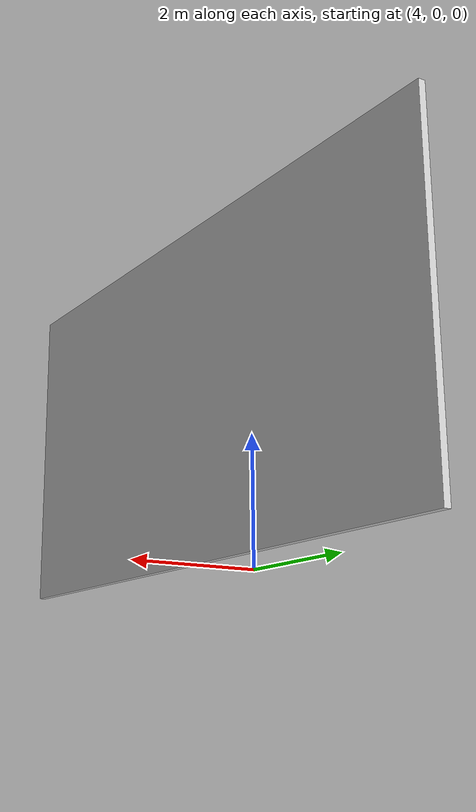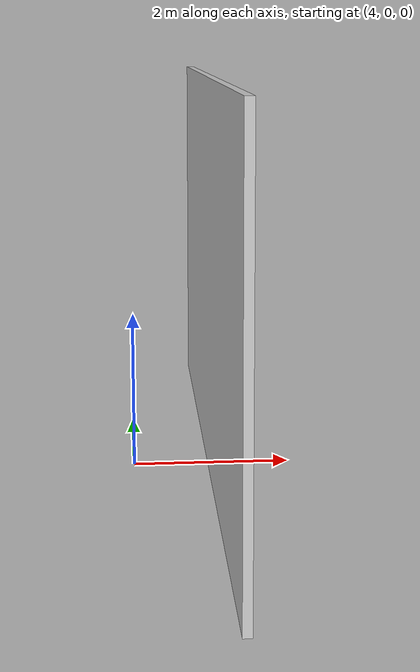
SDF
<sdf version='1.7'>
    <!-- north wall -->
    <model name='north_wall'>
        <static>true</static>
        <link name='link'>
            <collision name='collision'>
                <geometry>
                    <box>
                        <size>0.1 10 5</size>
                    </box>
                </geometry>
            </collision>
            <visual name='visual'>
                <geometry>
                    <box>
                        <size>0.1 10 5</size>
                    </box>
                </geometry>
                <material>
                    <diffuse>0.8 0.8 0.8 1</diffuse>
                    <script>
                        <uri>model://walls/wall1.material</uri>
                        <name>WallPaper1</name>
                    </script>
                </material>
            </visual>
        </link>
        <pose>5 0 2.5 0 -0 0</pose>
    </model>
</sdf>
